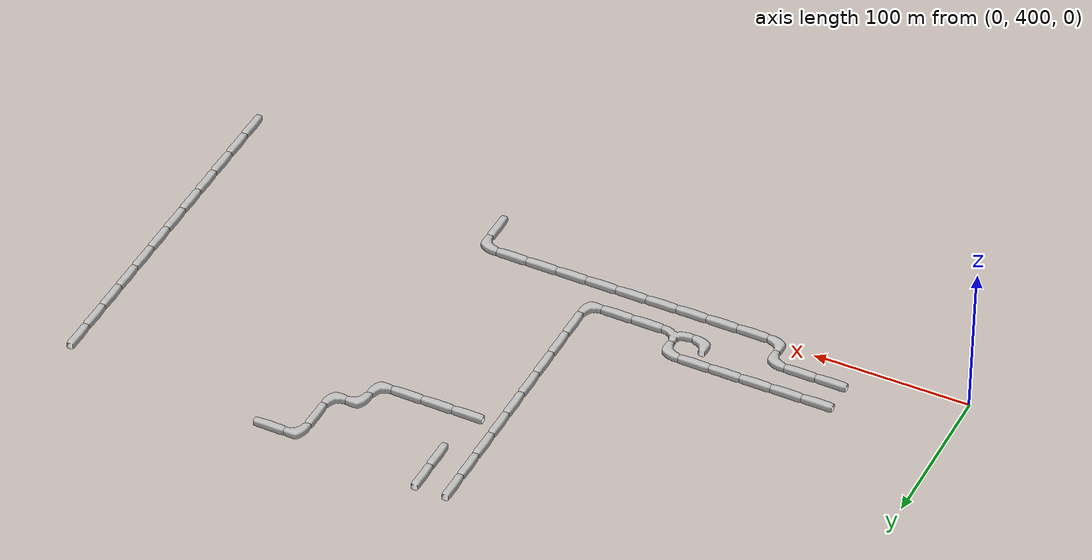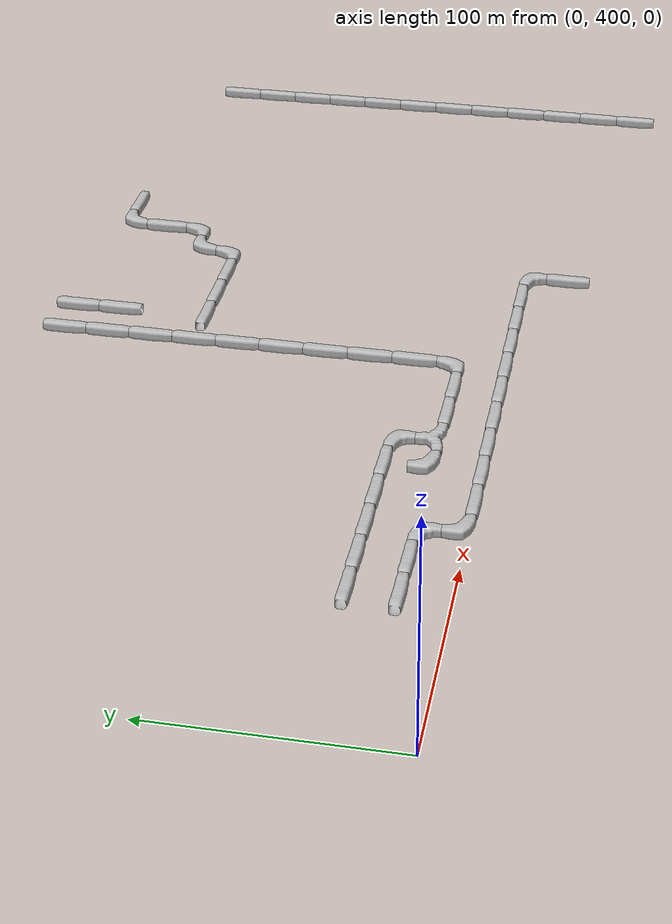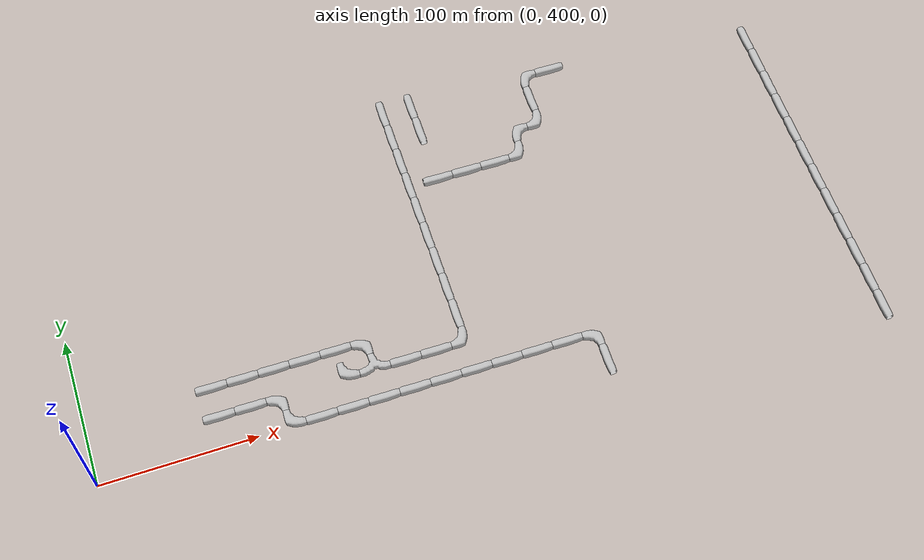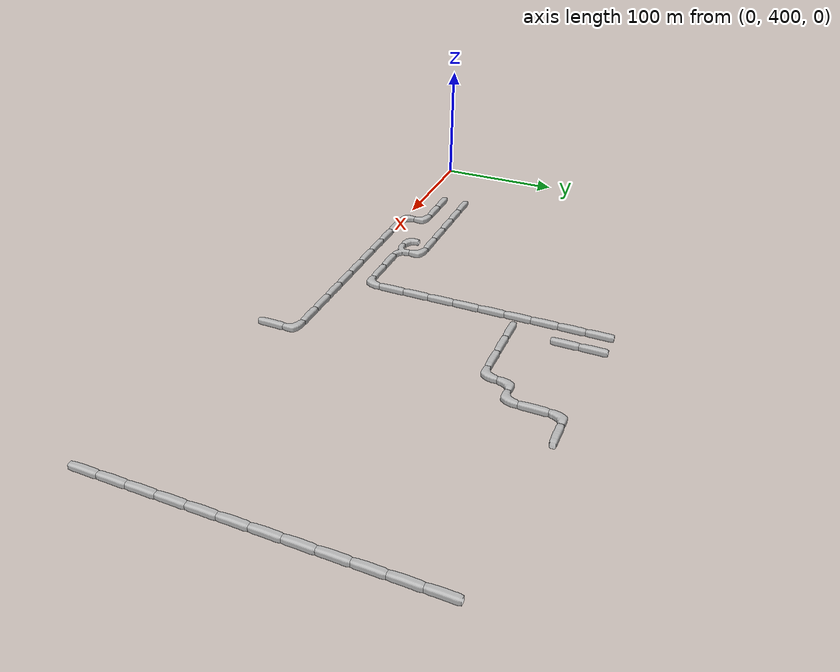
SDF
<sdf version="1.6">
 <world name="cave_32000_2">
  <include>
   <static>true</static>
   <name>cave_13_30</name>
   <pose>260 600 0 0 0 0.0</pose>
   <uri>model://cave_straight_20m</uri>
  </include>
  <include>
   <static>true</static>
   <name>cave_13_29</name>
   <pose>260 580 0 0 0 0.0</pose>
   <uri>model://cave_straight_20m</uri>
  </include>
  <include>
   <static>true</static>
   <name>cave_25_18</name>
   <pose>500 360 0 0 0 0.0</pose>
   <uri>model://cave_straight_20m</uri>
  </include>
  <include>
   <static>true</static>
   <name>cave_25_19</name>
   <pose>500 380 0 0 0 0.0</pose>
   <uri>model://cave_straight_20m</uri>
  </include>
  <include>
   <static>true</static>
   <name>cave_25_20</name>
   <pose>500 400 0 0 0 0.0</pose>
   <uri>model://cave_straight_20m</uri>
  </include>
  <include>
   <static>true</static>
   <name>cave_25_21</name>
   <pose>500 420 0 0 0 0.0</pose>
   <uri>model://cave_straight_20m</uri>
  </include>
  <include>
   <static>true</static>
   <name>cave_25_22</name>
   <pose>500 440 0 0 0 0.0</pose>
   <uri>model://cave_straight_20m</uri>
  </include>
  <include>
   <static>true</static>
   <name>cave_25_23</name>
   <pose>500 460 0 0 0 0.0</pose>
   <uri>model://cave_straight_20m</uri>
  </include>
  <include>
   <static>true</static>
   <name>cave_25_24</name>
   <pose>500 480 0 0 0 0.0</pose>
   <uri>model://cave_straight_20m</uri>
  </include>
  <include>
   <static>true</static>
   <name>cave_25_25</name>
   <pose>500 500 0 0 0 0.0</pose>
   <uri>model://cave_straight_20m</uri>
  </include>
  <include>
   <static>true</static>
   <name>cave_25_26</name>
   <pose>500 520 0 0 0 0.0</pose>
   <uri>model://cave_straight_20m</uri>
  </include>
  <include>
   <static>true</static>
   <name>cave_25_27</name>
   <pose>500 540 0 0 0 0.0</pose>
   <uri>model://cave_straight_20m</uri>
  </include>
  <include>
   <static>true</static>
   <name>cave_25_28</name>
   <pose>500 560 0 0 0 0.0</pose>
   <uri>model://cave_straight_20m</uri>
  </include>
  <include>
   <static>true</static>
   <name>cave_25_29</name>
   <pose>500 580 0 0 0 0.0</pose>
   <uri>model://cave_straight_20m</uri>
  </include>
  <include>
   <static>true</static>
   <name>cave_18_30</name>
   <pose>360 600 0 0 0 1.5707963267948966</pose>
   <uri>model://cave_straight_20m</uri>
  </include>
  <include>
   <static>true</static>
   <name>cave_17_30</name>
   <pose>340 600 0 0 0 -1.5707963267948966</pose>
   <uri>model://cave_L_20m</uri>
  </include>
  <include>
   <static>true</static>
   <name>cave_17_29</name>
   <pose>340 580 0 0 0 0.0</pose>
   <uri>model://cave_straight_20m</uri>
  </include>
  <include>
   <static>true</static>
   <name>cave_17_28</name>
   <pose>340 560 0 0 0 1.5707963267948966</pose>
   <uri>model://cave_L_20m</uri>
  </include>
  <include>
   <static>true</static>
   <name>cave_16_28</name>
   <pose>320 560 0 0 0 -1.5707963267948966</pose>
   <uri>model://cave_L_20m</uri>
  </include>
  <include>
   <static>true</static>
   <name>cave_16_27</name>
   <pose>320 540 0 0 0 1.5707963267948966</pose>
   <uri>model://cave_L_20m</uri>
  </include>
  <include>
   <static>true</static>
   <name>cave_15_27</name>
   <pose>300 540 0 0 0 1.5707963267948966</pose>
   <uri>model://cave_straight_20m</uri>
  </include>
  <include>
   <static>true</static>
   <name>cave_14_27</name>
   <pose>280 540 0 0 0 1.5707963267948966</pose>
   <uri>model://cave_straight_20m</uri>
  </include>
  <include>
   <static>true</static>
   <name>cave_13_27</name>
   <pose>260 540 0 0 0 1.5707963267948966</pose>
   <uri>model://cave_straight_20m</uri>
  </include>
  <include>
   <static>true</static>
   <name>cave_4_21</name>
   <pose>80 420 0 0 0 1.5707963267948966</pose>
   <uri>model://cave_straight_20m</uri>
  </include>
  <include>
   <static>true</static>
   <name>cave_5_21</name>
   <pose>100 420 0 0 0 1.5707963267948966</pose>
   <uri>model://cave_straight_20m</uri>
  </include>
  <include>
   <static>true</static>
   <name>cave_6_21</name>
   <pose>120 420 0 0 0 3.141592653589793</pose>
   <uri>model://cave_L_20m</uri>
  </include>
  <include>
   <static>true</static>
   <name>cave_6_20</name>
   <pose>120 400 0 0 0 0.0</pose>
   <uri>model://cave_L_20m</uri>
  </include>
  <include>
   <static>true</static>
   <name>cave_7_20</name>
   <pose>140 400 0 0 0 1.5707963267948966</pose>
   <uri>model://cave_straight_20m</uri>
  </include>
  <include>
   <static>true</static>
   <name>cave_8_20</name>
   <pose>160 400 0 0 0 1.5707963267948966</pose>
   <uri>model://cave_straight_20m</uri>
  </include>
  <include>
   <static>true</static>
   <name>cave_9_20</name>
   <pose>180 400 0 0 0 1.5707963267948966</pose>
   <uri>model://cave_straight_20m</uri>
  </include>
  <include>
   <static>true</static>
   <name>cave_10_20</name>
   <pose>200 400 0 0 0 1.5707963267948966</pose>
   <uri>model://cave_straight_20m</uri>
  </include>
  <include>
   <static>true</static>
   <name>cave_11_20</name>
   <pose>220 400 0 0 0 1.5707963267948966</pose>
   <uri>model://cave_straight_20m</uri>
  </include>
  <include>
   <static>true</static>
   <name>cave_12_20</name>
   <pose>240 400 0 0 0 1.5707963267948966</pose>
   <uri>model://cave_straight_20m</uri>
  </include>
  <include>
   <static>true</static>
   <name>cave_13_20</name>
   <pose>260 400 0 0 0 1.5707963267948966</pose>
   <uri>model://cave_straight_20m</uri>
  </include>
  <include>
   <static>true</static>
   <name>cave_14_20</name>
   <pose>280 400 0 0 0 1.5707963267948966</pose>
   <uri>model://cave_straight_20m</uri>
  </include>
  <include>
   <static>true</static>
   <name>cave_15_20</name>
   <pose>300 400 0 0 0 1.5707963267948966</pose>
   <uri>model://cave_straight_20m</uri>
  </include>
  <include>
   <static>true</static>
   <name>cave_16_20</name>
   <pose>320 400 0 0 0 3.141592653589793</pose>
   <uri>model://cave_L_20m</uri>
  </include>
  <include>
   <static>true</static>
   <name>cave_16_19</name>
   <pose>320 380 0 0 0 0.0</pose>
   <uri>model://cave_straight_20m</uri>
  </include>
  <include>
   <static>true</static>
   <name>cave_4_22</name>
   <pose>80 440 0 0 0 1.5707963267948966</pose>
   <uri>model://cave_straight_20m</uri>
  </include>
  <include>
   <static>true</static>
   <name>cave_5_22</name>
   <pose>100 440 0 0 0 1.5707963267948966</pose>
   <uri>model://cave_straight_20m</uri>
  </include>
  <include>
   <static>true</static>
   <name>cave_6_22</name>
   <pose>120 440 0 0 0 1.5707963267948966</pose>
   <uri>model://cave_straight_20m</uri>
  </include>
  <include>
   <static>true</static>
   <name>cave_7_22</name>
   <pose>140 440 0 0 0 1.5707963267948966</pose>
   <uri>model://cave_straight_20m</uri>
  </include>
  <include>
   <static>true</static>
   <name>cave_8_22</name>
   <pose>160 440 0 0 0 1.5707963267948966</pose>
   <uri>model://cave_straight_20m</uri>
  </include>
  <include>
   <static>true</static>
   <name>cave_9_22</name>
   <pose>180 440 0 0 0 3.141592653589793</pose>
   <uri>model://cave_L_20m</uri>
  </include>
  <include>
   <static>true</static>
   <name>cave_9_21</name>
   <pose>180 420 0 0 0 0.0</pose>
   <uri>model://cave_3way_20m</uri>
  </include>
  <include>
   <static>true</static>
   <name>cave_10_21</name>
   <pose>200 420 0 0 0 1.5707963267948966</pose>
   <uri>model://cave_straight_20m</uri>
  </include>
  <include>
   <static>true</static>
   <name>cave_11_21</name>
   <pose>220 420 0 0 0 1.5707963267948966</pose>
   <uri>model://cave_straight_20m</uri>
  </include>
  <include>
   <static>true</static>
   <name>cave_12_21</name>
   <pose>240 420 0 0 0 1.5707963267948966</pose>
   <uri>model://cave_L_20m</uri>
  </include>
  <include>
   <static>true</static>
   <name>cave_12_22</name>
   <pose>240 440 0 0 0 0.0</pose>
   <uri>model://cave_straight_20m</uri>
  </include>
  <include>
   <static>true</static>
   <name>cave_12_23</name>
   <pose>240 460 0 0 0 0.0</pose>
   <uri>model://cave_straight_20m</uri>
  </include>
  <include>
   <static>true</static>
   <name>cave_12_24</name>
   <pose>240 480 0 0 0 0.0</pose>
   <uri>model://cave_straight_20m</uri>
  </include>
  <include>
   <static>true</static>
   <name>cave_12_25</name>
   <pose>240 500 0 0 0 0.0</pose>
   <uri>model://cave_straight_20m</uri>
  </include>
  <include>
   <static>true</static>
   <name>cave_12_26</name>
   <pose>240 520 0 0 0 0.0</pose>
   <uri>model://cave_straight_20m</uri>
  </include>
  <include>
   <static>true</static>
   <name>cave_12_27</name>
   <pose>240 540 0 0 0 0.0</pose>
   <uri>model://cave_straight_20m</uri>
  </include>
  <include>
   <static>true</static>
   <name>cave_12_28</name>
   <pose>240 560 0 0 0 0.0</pose>
   <uri>model://cave_straight_20m</uri>
  </include>
  <include>
   <static>true</static>
   <name>cave_12_29</name>
   <pose>240 580 0 0 0 0.0</pose>
   <uri>model://cave_straight_20m</uri>
  </include>
  <include>
   <static>true</static>
   <name>cave_12_30</name>
   <pose>240 600 0 0 0 0.0</pose>
   <uri>model://cave_straight_20m</uri>
  </include>
  <include>
   <static>true</static>
   <name>cave_8_21</name>
   <pose>160 420 0 0 0 0.0</pose>
   <uri>model://cave_L_20m</uri>
  </include>
 </world>
</sdf>
